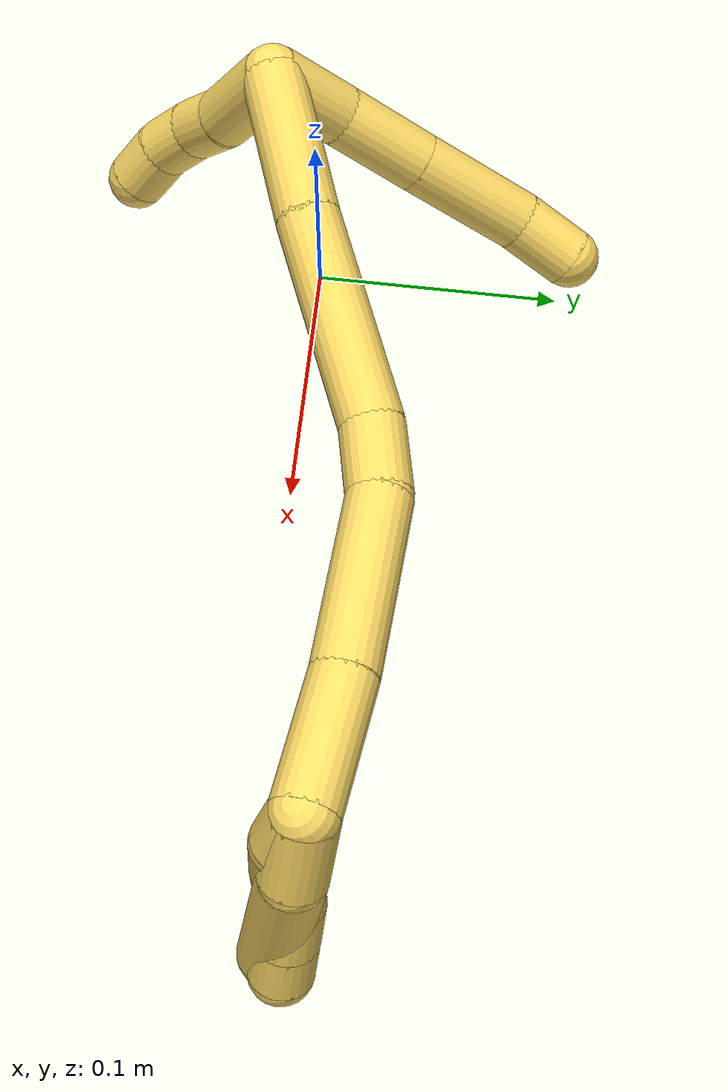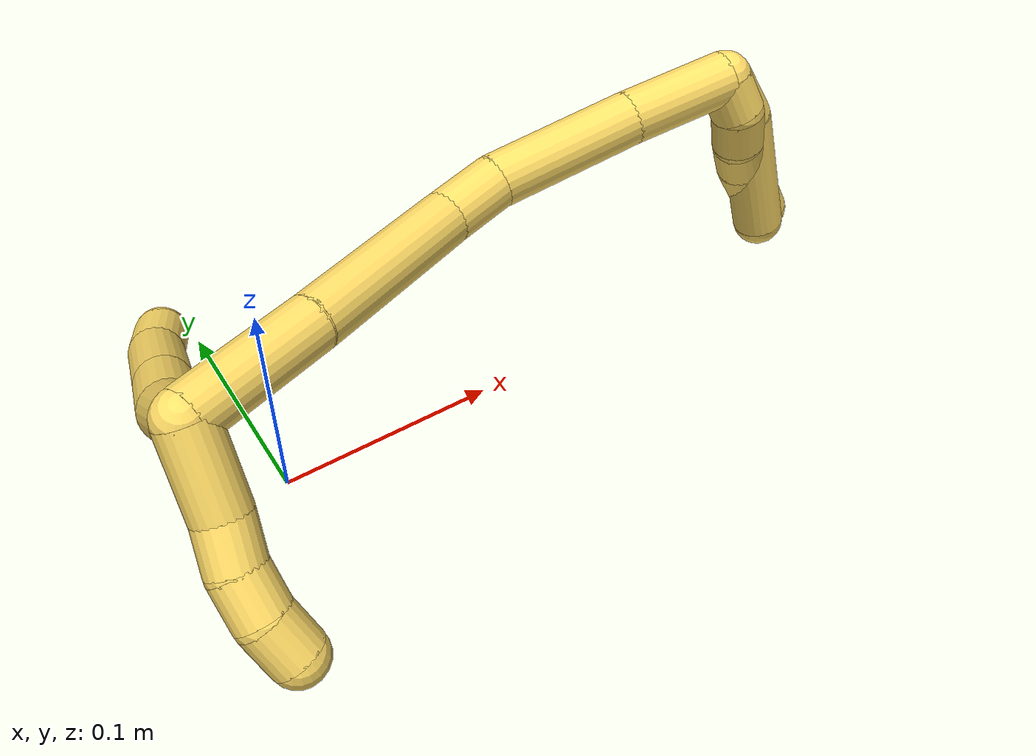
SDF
<sdf version="1.7">
 <world name="default">
  <model name="5">
   <static>0</static>
   <link name="5">
    <collision name="collision-cylinder-e_1_2_8">
     <pose>-0.000621 0.009563 -0.014036 -2.54351 -0.036533 0.118377</pose>
     <geometry><cylinder><radius>0.0125</radius><length>0.033991</length></cylinder></geometry>
     <surface>
      <friction><ode><mu>1.16</mu><mu2>1.16</mu2><slip1>0</slip1><slip2>0</slip2></ode></friction>
      <contact><ode><kp>1e+06</kp><kd>1</kd><max_vel>0</max_vel><min_depth>0.001</min_depth></ode></contact>
     </surface>
    </collision>
    <visual name="visual-cylinder-e_1_2_8">
     <pose>-0.000621 0.009563 -0.014036 -2.54351 -0.036533 0.118377</pose>
     <geometry><cylinder><radius>0.0125</radius><length>0.033991</length></cylinder></geometry>
     <material><ambient>1 0.858824 0.4 1</ambient></material>
    </visual>
    <collision name="collision-cylinder-e_2_8_9">
     <pose>0.000891 0.032156 -0.041771 -2.38122 0.112306 -0.279486</pose>
     <geometry><cylinder><radius>0.0125</radius><length>0.038052</length></cylinder></geometry>
     <surface>
      <friction><ode><mu>1.16</mu><mu2>1.16</mu2><slip1>0</slip1><slip2>0</slip2></ode></friction>
      <contact><ode><kp>1e+06</kp><kd>1</kd><max_vel>0</max_vel><min_depth>0.001</min_depth></ode></contact>
     </surface>
    </collision>
    <visual name="visual-cylinder-e_2_8_9">
     <pose>0.000891 0.032156 -0.041771 -2.38122 0.112306 -0.279486</pose>
     <geometry><cylinder><radius>0.0125</radius><length>0.038052</length></cylinder></geometry>
     <material><ambient>1 0.858824 0.4 1</ambient></material>
    </visual>
    <collision name="collision-cylinder-e_3_9_10">
     <pose>0.005849 0.062941 -0.073606 -2.36682 0.1109 -0.270431</pose>
     <geometry><cylinder><radius>0.0125</radius><length>0.051074</length></cylinder></geometry>
     <surface>
      <friction><ode><mu>1.16</mu><mu2>1.16</mu2><slip1>0</slip1><slip2>0</slip2></ode></friction>
      <contact><ode><kp>1e+06</kp><kd>1</kd><max_vel>0</max_vel><min_depth>0.001</min_depth></ode></contact>
     </surface>
    </collision>
    <visual name="visual-cylinder-e_3_9_10">
     <pose>0.005849 0.062941 -0.073606 -2.36682 0.1109 -0.270431</pose>
     <geometry><cylinder><radius>0.0125</radius><length>0.051074</length></cylinder></geometry>
     <material><ambient>1 0.858824 0.4 1</ambient></material>
    </visual>
    <collision name="collision-cylinder-e_4_10_6">
     <pose>0.012516 0.090329 -0.100294 -2.29677 0.289786 -0.627812</pose>
     <geometry><cylinder><radius>0.0125</radius><length>0.026883</length></cylinder></geometry>
     <surface>
      <friction><ode><mu>1.16</mu><mu2>1.16</mu2><slip1>0</slip1><slip2>0</slip2></ode></friction>
      <contact><ode><kp>1e+06</kp><kd>1</kd><max_vel>0</max_vel><min_depth>0.001</min_depth></ode></contact>
     </surface>
    </collision>
    <visual name="visual-cylinder-e_4_10_6">
     <pose>0.012516 0.090329 -0.100294 -2.29677 0.289786 -0.627812</pose>
     <geometry><cylinder><radius>0.0125</radius><length>0.026883</length></cylinder></geometry>
     <material><ambient>1 0.858824 0.4 1</ambient></material>
    </visual>
    <collision name="collision-cylinder-e_1_2_11">
     <pose>-0.000476 -0.014591 -0.012882 2.29404 -0.024457 -0.054205</pose>
     <geometry><cylinder><radius>0.0125</radius><length>0.038939</length></cylinder></geometry>
     <surface>
      <friction><ode><mu>1.16</mu><mu2>1.16</mu2><slip1>0</slip1><slip2>0</slip2></ode></friction>
      <contact><ode><kp>1e+06</kp><kd>1</kd><max_vel>0</max_vel><min_depth>0.001</min_depth></ode></contact>
     </surface>
    </collision>
    <visual name="visual-cylinder-e_1_2_11">
     <pose>-0.000476 -0.014591 -0.012882 2.29404 -0.024457 -0.054205</pose>
     <geometry><cylinder><radius>0.0125</radius><length>0.038939</length></cylinder></geometry>
     <material><ambient>1 0.858824 0.4 1</ambient></material>
    </visual>
    <collision name="collision-cylinder-e_2_11_12">
     <pose>-0.002365 -0.037791 -0.031069 2.1231 -0.13884 -0.247776</pose>
     <geometry><cylinder><radius>0.0125</radius><length>0.020421</length></cylinder></geometry>
     <surface>
      <friction><ode><mu>1.16</mu><mu2>1.16</mu2><slip1>0</slip1><slip2>0</slip2></ode></friction>
      <contact><ode><kp>1e+06</kp><kd>1</kd><max_vel>0</max_vel><min_depth>0.001</min_depth></ode></contact>
     </surface>
    </collision>
    <visual name="visual-cylinder-e_2_11_12">
     <pose>-0.002365 -0.037791 -0.031069 2.1231 -0.13884 -0.247776</pose>
     <geometry><cylinder><radius>0.0125</radius><length>0.020421</length></cylinder></geometry>
     <material><ambient>1 0.858824 0.4 1</ambient></material>
    </visual>
    <collision name="collision-cylinder-e_3_12_13">
     <pose>-0.002849 -0.055085 -0.041308 2.08742 0.092783 0.159196</pose>
     <geometry><cylinder><radius>0.0125</radius><length>0.020064</length></cylinder></geometry>
     <surface>
      <friction><ode><mu>1.16</mu><mu2>1.16</mu2><slip1>0</slip1><slip2>0</slip2></ode></friction>
      <contact><ode><kp>1e+06</kp><kd>1</kd><max_vel>0</max_vel><min_depth>0.001</min_depth></ode></contact>
     </surface>
    </collision>
    <visual name="visual-cylinder-e_3_12_13">
     <pose>-0.002849 -0.055085 -0.041308 2.08742 0.092783 0.159196</pose>
     <geometry><cylinder><radius>0.0125</radius><length>0.020064</length></cylinder></geometry>
     <material><ambient>1 0.858824 0.4 1</ambient></material>
    </visual>
    <collision name="collision-cylinder-e_4_13_5">
     <pose>0.001194 -0.071505 -0.052268 2.23269 0.30749 0.614309</pose>
     <geometry><cylinder><radius>0.0125</radius><length>0.020576</length></cylinder></geometry>
     <surface>
      <friction><ode><mu>1.16</mu><mu2>1.16</mu2><slip1>0</slip1><slip2>0</slip2></ode></friction>
      <contact><ode><kp>1e+06</kp><kd>1</kd><max_vel>0</max_vel><min_depth>0.001</min_depth></ode></contact>
     </surface>
    </collision>
    <visual name="visual-cylinder-e_4_13_5">
     <pose>0.001194 -0.071505 -0.052268 2.23269 0.30749 0.614309</pose>
     <geometry><cylinder><radius>0.0125</radius><length>0.020576</length></cylinder></geometry>
     <material><ambient>1 0.858824 0.4 1</ambient></material>
    </visual>
    <collision name="collision-cylinder-e_1_2_14">
     <pose>0.029505 0.010327 -0.005132 -2.03195 1.19821 -1.66755</pose>
     <geometry><cylinder><radius>0.0125</radius><length>0.063357</length></cylinder></geometry>
     <surface>
      <friction><ode><mu>1.16</mu><mu2>1.16</mu2><slip1>0</slip1><slip2>0</slip2></ode></friction>
      <contact><ode><kp>1e+06</kp><kd>1</kd><max_vel>0</max_vel><min_depth>0.001</min_depth></ode></contact>
     </surface>
    </collision>
    <visual name="visual-cylinder-e_1_2_14">
     <pose>0.029505 0.010327 -0.005132 -2.03195 1.19821 -1.66755</pose>
     <geometry><cylinder><radius>0.0125</radius><length>0.063357</length></cylinder></geometry>
     <material><ambient>1 0.858824 0.4 1</ambient></material>
    </visual>
    <collision name="collision-cylinder-e_2_14_15">
     <pose>0.097942 0.036435 -0.01922 -2.08703 1.13465 -1.66082</pose>
     <geometry><cylinder><radius>0.0125</radius><length>0.085904</length></cylinder></geometry>
     <surface>
      <friction><ode><mu>1.16</mu><mu2>1.16</mu2><slip1>0</slip1><slip2>0</slip2></ode></friction>
      <contact><ode><kp>1e+06</kp><kd>1</kd><max_vel>0</max_vel><min_depth>0.001</min_depth></ode></contact>
     </surface>
    </collision>
    <visual name="visual-cylinder-e_2_14_15">
     <pose>0.097942 0.036435 -0.01922 -2.08703 1.13465 -1.66082</pose>
     <geometry><cylinder><radius>0.0125</radius><length>0.085904</length></cylinder></geometry>
     <material><ambient>1 0.858824 0.4 1</ambient></material>
    </visual>
    <collision name="collision-cylinder-e_3_15_16">
     <pose>0.151299 0.055876 -0.027612 -1.41791 1.31951 -1.17416</pose>
     <geometry><cylinder><radius>0.0125</radius><length>0.029788</length></cylinder></geometry>
     <surface>
      <friction><ode><mu>1.16</mu><mu2>1.16</mu2><slip1>0</slip1><slip2>0</slip2></ode></friction>
      <contact><ode><kp>1e+06</kp><kd>1</kd><max_vel>0</max_vel><min_depth>0.001</min_depth></ode></contact>
     </surface>
    </collision>
    <visual name="visual-cylinder-e_3_15_16">
     <pose>0.151299 0.055876 -0.027612 -1.41791 1.31951 -1.17416</pose>
     <geometry><cylinder><radius>0.0125</radius><length>0.029788</length></cylinder></geometry>
     <material><ambient>1 0.858824 0.4 1</ambient></material>
    </visual>
    <collision name="collision-cylinder-e_4_16_17">
     <pose>0.200611 0.059394 -0.022622 0.032093 1.44454 0.028278</pose>
     <geometry><cylinder><radius>0.0125</radius><length>0.07033</length></cylinder></geometry>
     <surface>
      <friction><ode><mu>1.16</mu><mu2>1.16</mu2><slip1>0</slip1><slip2>0</slip2></ode></friction>
      <contact><ode><kp>1e+06</kp><kd>1</kd><max_vel>0</max_vel><min_depth>0.001</min_depth></ode></contact>
     </surface>
    </collision>
    <visual name="visual-cylinder-e_4_16_17">
     <pose>0.200611 0.059394 -0.022622 0.032093 1.44454 0.028278</pose>
     <geometry><cylinder><radius>0.0125</radius><length>0.07033</length></cylinder></geometry>
     <material><ambient>1 0.858824 0.4 1</ambient></material>
    </visual>
    <collision name="collision-cylinder-e_5_17_1">
     <pose>0.260412 0.057484 -0.014115 0.4088 1.39411 0.343698</pose>
     <geometry><cylinder><radius>0.0125</radius><length>0.05062</length></cylinder></geometry>
     <surface>
      <friction><ode><mu>1.16</mu><mu2>1.16</mu2><slip1>0</slip1><slip2>0</slip2></ode></friction>
      <contact><ode><kp>1e+06</kp><kd>1</kd><max_vel>0</max_vel><min_depth>0.001</min_depth></ode></contact>
     </surface>
    </collision>
    <visual name="visual-cylinder-e_5_17_1">
     <pose>0.260412 0.057484 -0.014115 0.4088 1.39411 0.343698</pose>
     <geometry><cylinder><radius>0.0125</radius><length>0.05062</length></cylinder></geometry>
     <material><ambient>1 0.858824 0.4 1</ambient></material>
    </visual>
    <collision name="collision-cylinder-e_1_1_18">
     <pose>0.288547 0.050484 -0.017924 2.55623 0.327751 1.00377</pose>
     <geometry><cylinder><radius>0.0125</radius><length>0.02</length></cylinder></geometry>
     <surface>
      <friction><ode><mu>1.16</mu><mu2>1.16</mu2><slip1>0</slip1><slip2>0</slip2></ode></friction>
      <contact><ode><kp>1e+06</kp><kd>1</kd><max_vel>0</max_vel><min_depth>0.001</min_depth></ode></contact>
     </surface>
    </collision>
    <visual name="visual-cylinder-e_1_1_18">
     <pose>0.288547 0.050484 -0.017924 2.55623 0.327751 1.00377</pose>
     <geometry><cylinder><radius>0.0125</radius><length>0.02</length></cylinder></geometry>
     <material><ambient>1 0.858824 0.4 1</ambient></material>
    </visual>
    <collision name="collision-cylinder-e_2_18_19">
     <pose>0.293822 0.042734 -0.035272 2.88125 0.207109 1.34198</pose>
     <geometry><cylinder><radius>0.0125</radius><length>0.02</length></cylinder></geometry>
     <surface>
      <friction><ode><mu>1.16</mu><mu2>1.16</mu2><slip1>0</slip1><slip2>0</slip2></ode></friction>
      <contact><ode><kp>1e+06</kp><kd>1</kd><max_vel>0</max_vel><min_depth>0.001</min_depth></ode></contact>
     </surface>
    </collision>
    <visual name="visual-cylinder-e_2_18_19">
     <pose>0.293822 0.042734 -0.035272 2.88125 0.207109 1.34198</pose>
     <geometry><cylinder><radius>0.0125</radius><length>0.02</length></cylinder></geometry>
     <material><ambient>1 0.858824 0.4 1</ambient></material>
    </visual>
    <collision name="collision-cylinder-e_3_19_20">
     <pose>0.299741 0.039053 -0.053879 3.01528 0.39649 2.53163</pose>
     <geometry><cylinder><radius>0.0125</radius><length>0.02</length></cylinder></geometry>
     <surface>
      <friction><ode><mu>1.16</mu><mu2>1.16</mu2><slip1>0</slip1><slip2>0</slip2></ode></friction>
      <contact><ode><kp>1e+06</kp><kd>1</kd><max_vel>0</max_vel><min_depth>0.001</min_depth></ode></contact>
     </surface>
    </collision>
    <visual name="visual-cylinder-e_3_19_20">
     <pose>0.299741 0.039053 -0.053879 3.01528 0.39649 2.53163</pose>
     <geometry><cylinder><radius>0.0125</radius><length>0.02</length></cylinder></geometry>
     <material><ambient>1 0.858824 0.4 1</ambient></material>
    </visual>
    <collision name="collision-cylinder-e_4_20_21">
     <pose>0.308347 0.035105 -0.07138 2.81953 0.494384 1.99773</pose>
     <geometry><cylinder><radius>0.0125</radius><length>0.02</length></cylinder></geometry>
     <surface>
      <friction><ode><mu>1.16</mu><mu2>1.16</mu2><slip1>0</slip1><slip2>0</slip2></ode></friction>
      <contact><ode><kp>1e+06</kp><kd>1</kd><max_vel>0</max_vel><min_depth>0.001</min_depth></ode></contact>
     </surface>
    </collision>
    <visual name="visual-cylinder-e_4_20_21">
     <pose>0.308347 0.035105 -0.07138 2.81953 0.494384 1.99773</pose>
     <geometry><cylinder><radius>0.0125</radius><length>0.02</length></cylinder></geometry>
     <material><ambient>1 0.858824 0.4 1</ambient></material>
    </visual>
    <collision name="collision-cylinder-e_5_21_4">
     <pose>0.317671 0.029457 -0.088147 2.81393 0.475611 1.9445</pose>
     <geometry><cylinder><radius>0.0125</radius><length>0.02</length></cylinder></geometry>
     <surface>
      <friction><ode><mu>1.16</mu><mu2>1.16</mu2><slip1>0</slip1><slip2>0</slip2></ode></friction>
      <contact><ode><kp>1e+06</kp><kd>1</kd><max_vel>0</max_vel><min_depth>0.001</min_depth></ode></contact>
     </surface>
    </collision>
    <visual name="visual-cylinder-e_5_21_4">
     <pose>0.317671 0.029457 -0.088147 2.81393 0.475611 1.9445</pose>
     <geometry><cylinder><radius>0.0125</radius><length>0.02</length></cylinder></geometry>
     <material><ambient>1 0.858824 0.4 1</ambient></material>
    </visual>
    <collision name="collision-cylinder-e_1_1_22">
     <pose>0.293076 0.051125 -0.022543 2.78992 0.526643 1.97614</pose>
     <geometry><cylinder><radius>0.0125</radius><length>0.030829</length></cylinder></geometry>
     <surface>
      <friction><ode><mu>1.16</mu><mu2>1.16</mu2><slip1>0</slip1><slip2>0</slip2></ode></friction>
      <contact><ode><kp>1e+06</kp><kd>1</kd><max_vel>0</max_vel><min_depth>0.001</min_depth></ode></contact>
     </surface>
    </collision>
    <visual name="visual-cylinder-e_1_1_22">
     <pose>0.293076 0.051125 -0.022543 2.78992 0.526643 1.97614</pose>
     <geometry><cylinder><radius>0.0125</radius><length>0.030829</length></cylinder></geometry>
     <material><ambient>1 0.858824 0.4 1</ambient></material>
    </visual>
    <collision name="collision-cylinder-e_2_22_3">
     <pose>0.308481 0.033904 -0.066326 2.75775 0.223276 1.04657</pose>
     <geometry><cylinder><radius>0.0125</radius><length>0.069171</length></cylinder></geometry>
     <surface>
      <friction><ode><mu>1.16</mu><mu2>1.16</mu2><slip1>0</slip1><slip2>0</slip2></ode></friction>
      <contact><ode><kp>1e+06</kp><kd>1</kd><max_vel>0</max_vel><min_depth>0.001</min_depth></ode></contact>
     </surface>
    </collision>
    <visual name="visual-cylinder-e_2_22_3">
     <pose>0.308481 0.033904 -0.066326 2.75775 0.223276 1.04657</pose>
     <geometry><cylinder><radius>0.0125</radius><length>0.069171</length></cylinder></geometry>
     <material><ambient>1 0.858824 0.4 1</ambient></material>
    </visual>
    <collision name="collision-sphere-3">
     <pose>0.31614 0.021274 -0.097599 0 -0 0</pose>
     <geometry><sphere><radius>0.0125</radius></sphere></geometry>
     <surface>
      <friction><ode><mu>1.16</mu><mu2>1.16</mu2><slip1>0</slip1><slip2>0</slip2></ode></friction>
      <contact><ode><kp>1e+06</kp><kd>1</kd><max_vel>0</max_vel><min_depth>0.001</min_depth></ode></contact>
     </surface>
    </collision>
    <visual name="visual-sphere-3">
     <pose>0.31614 0.021274 -0.097599 0 -0 0</pose>
     <geometry><sphere><radius>0.0125</radius></sphere></geometry>
     <material><ambient>1 0.858824 0.4 1</ambient></material>
    </visual>
    <collision name="collision-sphere-22">
     <pose>0.300823 0.046534 -0.035053 0 -0 0</pose>
     <geometry><sphere><radius>0.0125</radius></sphere></geometry>
     <surface>
      <friction><ode><mu>1.16</mu><mu2>1.16</mu2><slip1>0</slip1><slip2>0</slip2></ode></friction>
      <contact><ode><kp>1e+06</kp><kd>1</kd><max_vel>0</max_vel><min_depth>0.001</min_depth></ode></contact>
     </surface>
    </collision>
    <visual name="visual-sphere-22">
     <pose>0.300823 0.046534 -0.035053 0 -0 0</pose>
     <geometry><sphere><radius>0.0125</radius></sphere></geometry>
     <material><ambient>1 0.858824 0.4 1</ambient></material>
    </visual>
    <collision name="collision-sphere-4">
     <pose>0.32225 0.026596 -0.096564 0 -0 0</pose>
     <geometry><sphere><radius>0.0125</radius></sphere></geometry>
     <surface>
      <friction><ode><mu>1.16</mu><mu2>1.16</mu2><slip1>0</slip1><slip2>0</slip2></ode></friction>
      <contact><ode><kp>1e+06</kp><kd>1</kd><max_vel>0</max_vel><min_depth>0.001</min_depth></ode></contact>
     </surface>
    </collision>
    <visual name="visual-sphere-4">
     <pose>0.32225 0.026596 -0.096564 0 -0 0</pose>
     <geometry><sphere><radius>0.0125</radius></sphere></geometry>
     <material><ambient>1 0.858824 0.4 1</ambient></material>
    </visual>
    <collision name="collision-sphere-21">
     <pose>0.313092 0.032319 -0.07973 0 -0 0</pose>
     <geometry><sphere><radius>0.0125</radius></sphere></geometry>
     <surface>
      <friction><ode><mu>1.16</mu><mu2>1.16</mu2><slip1>0</slip1><slip2>0</slip2></ode></friction>
      <contact><ode><kp>1e+06</kp><kd>1</kd><max_vel>0</max_vel><min_depth>0.001</min_depth></ode></contact>
     </surface>
    </collision>
    <visual name="visual-sphere-21">
     <pose>0.313092 0.032319 -0.07973 0 -0 0</pose>
     <geometry><sphere><radius>0.0125</radius></sphere></geometry>
     <material><ambient>1 0.858824 0.4 1</ambient></material>
    </visual>
    <collision name="collision-sphere-20">
     <pose>0.303602 0.037891 -0.06303 0 -0 0</pose>
     <geometry><sphere><radius>0.0125</radius></sphere></geometry>
     <surface>
      <friction><ode><mu>1.16</mu><mu2>1.16</mu2><slip1>0</slip1><slip2>0</slip2></ode></friction>
      <contact><ode><kp>1e+06</kp><kd>1</kd><max_vel>0</max_vel><min_depth>0.001</min_depth></ode></contact>
     </surface>
    </collision>
    <visual name="visual-sphere-20">
     <pose>0.303602 0.037891 -0.06303 0 -0 0</pose>
     <geometry><sphere><radius>0.0125</radius></sphere></geometry>
     <material><ambient>1 0.858824 0.4 1</ambient></material>
    </visual>
    <collision name="collision-sphere-11">
     <pose>-0.000952 -0.029183 -0.025763 0 -0 0</pose>
     <geometry><sphere><radius>0.0125</radius></sphere></geometry>
     <surface>
      <friction><ode><mu>1.16</mu><mu2>1.16</mu2><slip1>0</slip1><slip2>0</slip2></ode></friction>
      <contact><ode><kp>1e+06</kp><kd>1</kd><max_vel>0</max_vel><min_depth>0.001</min_depth></ode></contact>
     </surface>
    </collision>
    <visual name="visual-sphere-11">
     <pose>-0.000952 -0.029183 -0.025763 0 -0 0</pose>
     <geometry><sphere><radius>0.0125</radius></sphere></geometry>
     <material><ambient>1 0.858824 0.4 1</ambient></material>
    </visual>
    <collision name="collision-sphere-6">
     <pose>0.016357 0.099962 -0.108845 0 -0 0</pose>
     <geometry><sphere><radius>0.0125</radius></sphere></geometry>
     <surface>
      <friction><ode><mu>1.16</mu><mu2>1.16</mu2><slip1>0</slip1><slip2>0</slip2></ode></friction>
      <contact><ode><kp>1e+06</kp><kd>1</kd><max_vel>0</max_vel><min_depth>0.001</min_depth></ode></contact>
     </surface>
    </collision>
    <visual name="visual-sphere-6">
     <pose>0.016357 0.099962 -0.108845 0 -0 0</pose>
     <geometry><sphere><radius>0.0125</radius></sphere></geometry>
     <material><ambient>1 0.858824 0.4 1</ambient></material>
    </visual>
    <collision name="collision-sphere-10">
     <pose>0.008675 0.080696 -0.091742 0 -0 0</pose>
     <geometry><sphere><radius>0.0125</radius></sphere></geometry>
     <surface>
      <friction><ode><mu>1.16</mu><mu2>1.16</mu2><slip1>0</slip1><slip2>0</slip2></ode></friction>
      <contact><ode><kp>1e+06</kp><kd>1</kd><max_vel>0</max_vel><min_depth>0.001</min_depth></ode></contact>
     </surface>
    </collision>
    <visual name="visual-sphere-10">
     <pose>0.008675 0.080696 -0.091742 0 -0 0</pose>
     <geometry><sphere><radius>0.0125</radius></sphere></geometry>
     <material><ambient>1 0.858824 0.4 1</ambient></material>
    </visual>
    <collision name="collision-sphere-9">
     <pose>0.003023 0.045186 -0.05547 0 -0 0</pose>
     <geometry><sphere><radius>0.0125</radius></sphere></geometry>
     <surface>
      <friction><ode><mu>1.16</mu><mu2>1.16</mu2><slip1>0</slip1><slip2>0</slip2></ode></friction>
      <contact><ode><kp>1e+06</kp><kd>1</kd><max_vel>0</max_vel><min_depth>0.001</min_depth></ode></contact>
     </surface>
    </collision>
    <visual name="visual-sphere-9">
     <pose>0.003023 0.045186 -0.05547 0 -0 0</pose>
     <geometry><sphere><radius>0.0125</radius></sphere></geometry>
     <material><ambient>1 0.858824 0.4 1</ambient></material>
    </visual>
    <collision name="collision-sphere-2">
     <geometry><sphere><radius>0.0125</radius></sphere></geometry>
     <surface>
      <friction><ode><mu>1.16</mu><mu2>1.16</mu2><slip1>0</slip1><slip2>0</slip2></ode></friction>
      <contact><ode><kp>1e+06</kp><kd>1</kd><max_vel>0</max_vel><min_depth>0.001</min_depth></ode></contact>
     </surface>
    </collision>
    <visual name="visual-sphere-2">
     <geometry><sphere><radius>0.0125</radius></sphere></geometry>
     <material><ambient>1 0.858824 0.4 1</ambient></material>
    </visual>
    <collision name="collision-sphere-19">
     <pose>0.295879 0.040215 -0.044729 0 -0 0</pose>
     <geometry><sphere><radius>0.0125</radius></sphere></geometry>
     <surface>
      <friction><ode><mu>1.16</mu><mu2>1.16</mu2><slip1>0</slip1><slip2>0</slip2></ode></friction>
      <contact><ode><kp>1e+06</kp><kd>1</kd><max_vel>0</max_vel><min_depth>0.001</min_depth></ode></contact>
     </surface>
    </collision>
    <visual name="visual-sphere-19">
     <pose>0.295879 0.040215 -0.044729 0 -0 0</pose>
     <geometry><sphere><radius>0.0125</radius></sphere></geometry>
     <material><ambient>1 0.858824 0.4 1</ambient></material>
    </visual>
    <collision name="collision-sphere-8">
     <pose>-0.001242 0.019126 -0.028072 0 -0 0</pose>
     <geometry><sphere><radius>0.0125</radius></sphere></geometry>
     <surface>
      <friction><ode><mu>1.16</mu><mu2>1.16</mu2><slip1>0</slip1><slip2>0</slip2></ode></friction>
      <contact><ode><kp>1e+06</kp><kd>1</kd><max_vel>0</max_vel><min_depth>0.001</min_depth></ode></contact>
     </surface>
    </collision>
    <visual name="visual-sphere-8">
     <pose>-0.001242 0.019126 -0.028072 0 -0 0</pose>
     <geometry><sphere><radius>0.0125</radius></sphere></geometry>
     <material><ambient>1 0.858824 0.4 1</ambient></material>
    </visual>
    <collision name="collision-sphere-12">
     <pose>-0.003778 -0.0464 -0.036374 0 -0 0</pose>
     <geometry><sphere><radius>0.0125</radius></sphere></geometry>
     <surface>
      <friction><ode><mu>1.16</mu><mu2>1.16</mu2><slip1>0</slip1><slip2>0</slip2></ode></friction>
      <contact><ode><kp>1e+06</kp><kd>1</kd><max_vel>0</max_vel><min_depth>0.001</min_depth></ode></contact>
     </surface>
    </collision>
    <visual name="visual-sphere-12">
     <pose>-0.003778 -0.0464 -0.036374 0 -0 0</pose>
     <geometry><sphere><radius>0.0125</radius></sphere></geometry>
     <material><ambient>1 0.858824 0.4 1</ambient></material>
    </visual>
    <collision name="collision-sphere-13">
     <pose>-0.00192 -0.06377 -0.046242 0 -0 0</pose>
     <geometry><sphere><radius>0.0125</radius></sphere></geometry>
     <surface>
      <friction><ode><mu>1.16</mu><mu2>1.16</mu2><slip1>0</slip1><slip2>0</slip2></ode></friction>
      <contact><ode><kp>1e+06</kp><kd>1</kd><max_vel>0</max_vel><min_depth>0.001</min_depth></ode></contact>
     </surface>
    </collision>
    <visual name="visual-sphere-13">
     <pose>-0.00192 -0.06377 -0.046242 0 -0 0</pose>
     <geometry><sphere><radius>0.0125</radius></sphere></geometry>
     <material><ambient>1 0.858824 0.4 1</ambient></material>
    </visual>
    <collision name="collision-sphere-5">
     <pose>0.004308 -0.07924 -0.058295 0 -0 0</pose>
     <geometry><sphere><radius>0.0125</radius></sphere></geometry>
     <surface>
      <friction><ode><mu>1.16</mu><mu2>1.16</mu2><slip1>0</slip1><slip2>0</slip2></ode></friction>
      <contact><ode><kp>1e+06</kp><kd>1</kd><max_vel>0</max_vel><min_depth>0.001</min_depth></ode></contact>
     </surface>
    </collision>
    <visual name="visual-sphere-5">
     <pose>0.004308 -0.07924 -0.058295 0 -0 0</pose>
     <geometry><sphere><radius>0.0125</radius></sphere></geometry>
     <material><ambient>1 0.858824 0.4 1</ambient></material>
    </visual>
    <collision name="collision-sphere-14">
     <pose>0.05901 0.020655 -0.010263 0 -0 0</pose>
     <geometry><sphere><radius>0.0125</radius></sphere></geometry>
     <surface>
      <friction><ode><mu>1.16</mu><mu2>1.16</mu2><slip1>0</slip1><slip2>0</slip2></ode></friction>
      <contact><ode><kp>1e+06</kp><kd>1</kd><max_vel>0</max_vel><min_depth>0.001</min_depth></ode></contact>
     </surface>
    </collision>
    <visual name="visual-sphere-14">
     <pose>0.05901 0.020655 -0.010263 0 -0 0</pose>
     <geometry><sphere><radius>0.0125</radius></sphere></geometry>
     <material><ambient>1 0.858824 0.4 1</ambient></material>
    </visual>
    <collision name="collision-sphere-15">
     <pose>0.136873 0.052216 -0.028176 0 -0 0</pose>
     <geometry><sphere><radius>0.0125</radius></sphere></geometry>
     <surface>
      <friction><ode><mu>1.16</mu><mu2>1.16</mu2><slip1>0</slip1><slip2>0</slip2></ode></friction>
      <contact><ode><kp>1e+06</kp><kd>1</kd><max_vel>0</max_vel><min_depth>0.001</min_depth></ode></contact>
     </surface>
    </collision>
    <visual name="visual-sphere-15">
     <pose>0.136873 0.052216 -0.028176 0 -0 0</pose>
     <geometry><sphere><radius>0.0125</radius></sphere></geometry>
     <material><ambient>1 0.858824 0.4 1</ambient></material>
    </visual>
    <collision name="collision-sphere-16">
     <pose>0.165726 0.059536 -0.027048 0 -0 0</pose>
     <geometry><sphere><radius>0.0125</radius></sphere></geometry>
     <surface>
      <friction><ode><mu>1.16</mu><mu2>1.16</mu2><slip1>0</slip1><slip2>0</slip2></ode></friction>
      <contact><ode><kp>1e+06</kp><kd>1</kd><max_vel>0</max_vel><min_depth>0.001</min_depth></ode></contact>
     </surface>
    </collision>
    <visual name="visual-sphere-16">
     <pose>0.165726 0.059536 -0.027048 0 -0 0</pose>
     <geometry><sphere><radius>0.0125</radius></sphere></geometry>
     <material><ambient>1 0.858824 0.4 1</ambient></material>
    </visual>
    <collision name="collision-sphere-17">
     <pose>0.235496 0.059252 -0.018197 0 -0 0</pose>
     <geometry><sphere><radius>0.0125</radius></sphere></geometry>
     <surface>
      <friction><ode><mu>1.16</mu><mu2>1.16</mu2><slip1>0</slip1><slip2>0</slip2></ode></friction>
      <contact><ode><kp>1e+06</kp><kd>1</kd><max_vel>0</max_vel><min_depth>0.001</min_depth></ode></contact>
     </surface>
    </collision>
    <visual name="visual-sphere-17">
     <pose>0.235496 0.059252 -0.018197 0 -0 0</pose>
     <geometry><sphere><radius>0.0125</radius></sphere></geometry>
     <material><ambient>1 0.858824 0.4 1</ambient></material>
    </visual>
    <collision name="collision-sphere-1">
     <pose>0.285328 0.055715 -0.010033 0 -0 0</pose>
     <geometry><sphere><radius>0.0125</radius></sphere></geometry>
     <surface>
      <friction><ode><mu>1.16</mu><mu2>1.16</mu2><slip1>0</slip1><slip2>0</slip2></ode></friction>
      <contact><ode><kp>1e+06</kp><kd>1</kd><max_vel>0</max_vel><min_depth>0.001</min_depth></ode></contact>
     </surface>
    </collision>
    <visual name="visual-sphere-1">
     <pose>0.285328 0.055715 -0.010033 0 -0 0</pose>
     <geometry><sphere><radius>0.0125</radius></sphere></geometry>
     <material><ambient>1 0.858824 0.4 1</ambient></material>
    </visual>
    <collision name="collision-sphere-18">
     <pose>0.291766 0.045253 -0.025815 0 -0 0</pose>
     <geometry><sphere><radius>0.0125</radius></sphere></geometry>
     <surface>
      <friction><ode><mu>1.16</mu><mu2>1.16</mu2><slip1>0</slip1><slip2>0</slip2></ode></friction>
      <contact><ode><kp>1e+06</kp><kd>1</kd><max_vel>0</max_vel><min_depth>0.001</min_depth></ode></contact>
     </surface>
    </collision>
    <visual name="visual-sphere-18">
     <pose>0.291766 0.045253 -0.025815 0 -0 0</pose>
     <geometry><sphere><radius>0.0125</radius></sphere></geometry>
     <material><ambient>1 0.858824 0.4 1</ambient></material>
    </visual>
    <inertial>
     <pose>0.137554 0.031558 -0.036375 0 -0 0</pose>
     <mass>0.75</mass>
     <inertia><ixx>7.7e-05</ixx><ixy>0</ixy><ixz>0</ixz><iyy>8e-05</iyy><iyz>0</iyz><izz>-0.000185</izz></inertia>
    </inertial>
   </link>
   <pose>-0.037834 -0.021292 0.088776 0.272749 -0.034508 -0.029798</pose>
  </model>
 </world>
</sdf>
